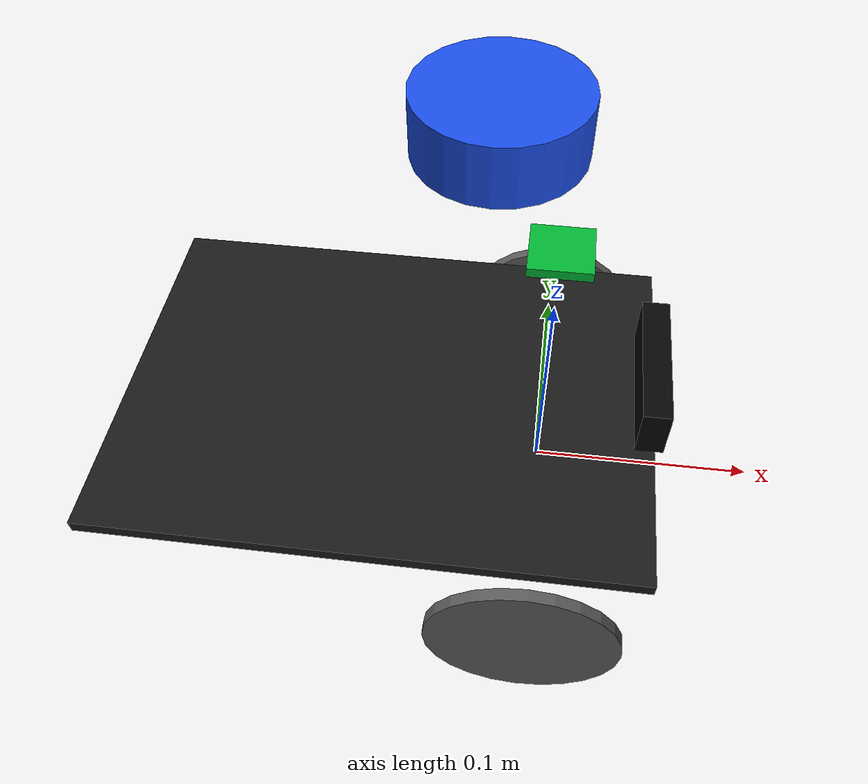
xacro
<?xml version="1.0"?>
<robot name="charlie" xmlns:xacro="http://www.ros.org/wiki/xacro">

  <!-- Base plate dimensions -->
  <xacro:property name="base_length" value="0.240"/>
  <xacro:property name="base_width"  value="0.175"/>
  <xacro:property name="base_height" value="0.006"/>

  <!-- Base plate visual/collision center relative to base_link -->
  <xacro:property name="base_box_x" value="-0.070"/>
  <xacro:property name="base_box_y" value="0.000"/>
  <xacro:property name="base_box_z" value="0.037"/>

  <!-- Wheel dimensions -->
  <xacro:property name="wheel_diameter" value="0.08454"/>
  <xacro:property name="wheel_radius" value="${wheel_diameter / 2.0}"/>
  <xacro:property name="wheel_width" value="0.00508"/>
  <xacro:property name="wheel_separation" value="0.196"/>

  <!-- LiDAR dimensions -->
  <xacro:property name="lidar_radius" value="0.031"/>
  <xacro:property name="lidar_height" value="0.023"/>

  <!-- Camera enclosure dimensions -->
  <xacro:property name="camera_length" value="0.012"/>
  <xacro:property name="camera_width" value="0.064"/>
  <xacro:property name="camera_height" value="0.023"/>

  <!-- IMU board dimensions -->
  <xacro:property name="imu_length" value="0.025"/>
  <xacro:property name="imu_width" value="0.025"/>
  <xacro:property name="imu_height" value="0.004"/>

  <!-- Sensor frame positions relative to base_link -->
  <xacro:property name="laser_x" value="-0.025"/>
  <xacro:property name="laser_y" value="0.000"/>
  <xacro:property name="laser_z" value="0.185"/>

  <!-- camera_link is the camera sensor frame.
       The sensor is offset from the enclosure center in y.
       The enclosure itself is centered at robot y = 0. -->
  <xacro:property name="camera_x" value="0.045"/>
  <xacro:property name="camera_y" value="-0.016"/>
  <xacro:property name="camera_z" value="0.065"/>

  <!-- Offset the camera body visual relative to camera_link so the
       enclosure center is at y = 0 in base_link coordinates. -->
  <xacro:property name="camera_body_x" value="0.000"/>
  <xacro:property name="camera_body_y" value="${-camera_y}"/>
  <xacro:property name="camera_body_z" value="0.000"/>

  <xacro:property name="imu_x" value="0.000"/>
  <xacro:property name="imu_y" value="0.000"/>
  <xacro:property name="imu_z" value="0.130"/>

  <!-- Materials -->
  <material name="charlie_dark">
    <color rgba="0.1 0.1 0.1 1.0"/>
  </material>

  <material name="wheel_gray">
    <color rgba="0.35 0.35 0.35 1.0"/>
  </material>

  <material name="lidar_blue">
    <color rgba="0.1 0.3 0.9 1.0"/>
  </material>

  <material name="camera_black">
    <color rgba="0.02 0.02 0.02 1.0"/>
  </material>

  <material name="imu_green">
    <color rgba="0.0 0.7 0.2 1.0"/>
  </material>

  <!-- Main robot body frame.
       base_link itself stays at the wheel axle reference.
       The base plate box is offset relative to base_link. -->
  <link name="base_link">
    <visual>
      <origin xyz="${base_box_x} ${base_box_y} ${base_box_z}" rpy="0 0 0"/>
      <geometry>
        <box size="${base_length} ${base_width} ${base_height}"/>
      </geometry>
      <material name="charlie_dark"/>
    </visual>

    <collision>
      <origin xyz="${base_box_x} ${base_box_y} ${base_box_z}" rpy="0 0 0"/>
      <geometry>
        <box size="${base_length} ${base_width} ${base_height}"/>
      </geometry>
    </collision>
  </link>

  <!-- Wheels.
       URDF cylinders are along local z by default.
       Rotate 90 degrees about x so the wheel axle points along robot y. -->
  <link name="left_wheel_link">
    <visual>
      <origin xyz="0 0 0" rpy="1.5708 0 0"/>
      <geometry>
        <cylinder radius="${wheel_radius}" length="${wheel_width}"/>
      </geometry>
      <material name="wheel_gray"/>
    </visual>

    <collision>
      <origin xyz="0 0 0" rpy="1.5708 0 0"/>
      <geometry>
        <cylinder radius="${wheel_radius}" length="${wheel_width}"/>
      </geometry>
    </collision>
  </link>

  <joint name="left_wheel_joint" type="fixed">
    <parent link="base_link"/>
    <child link="left_wheel_link"/>
    <origin xyz="0 ${wheel_separation / 2.0} 0" rpy="0 0 0"/>
  </joint>

  <link name="right_wheel_link">
    <visual>
      <origin xyz="0 0 0" rpy="1.5708 0 0"/>
      <geometry>
        <cylinder radius="${wheel_radius}" length="${wheel_width}"/>
      </geometry>
      <material name="wheel_gray"/>
    </visual>

    <collision>
      <origin xyz="0 0 0" rpy="1.5708 0 0"/>
      <geometry>
        <cylinder radius="${wheel_radius}" length="${wheel_width}"/>
      </geometry>
    </collision>
  </link>

  <joint name="right_wheel_joint" type="fixed">
    <parent link="base_link"/>
    <child link="right_wheel_link"/>
    <origin xyz="0 ${-wheel_separation / 2.0} 0" rpy="0 0 0"/>
  </joint>

  <!-- LiDAR frame.
       The LiDAR driver should publish LaserScan with header.frame_id = laser_frame.
       laser_frame is at the LiDAR scan/body center height. -->
  <link name="laser_frame">
    <visual>
      <origin xyz="0 0 0" rpy="0 0 0"/>
      <geometry>
        <cylinder radius="${lidar_radius}" length="${lidar_height}"/>
      </geometry>
      <material name="lidar_blue"/>
    </visual>

    <collision>
      <origin xyz="0 0 0" rpy="0 0 0"/>
      <geometry>
        <cylinder radius="${lidar_radius}" length="${lidar_height}"/>
      </geometry>
    </collision>
  </link>

  <joint name="laser_joint" type="fixed">
    <parent link="base_link"/>
    <child link="laser_frame"/>
    <origin xyz="${laser_x} ${laser_y} ${laser_z}" rpy="0 0 3.14159"/>
  </joint>

  <link name="camera_link">
    <visual>
      <origin xyz="${camera_body_x} ${camera_body_y} ${camera_body_z}" rpy="0 0 0"/>
      <geometry>
        <box size="${camera_length} ${camera_width} ${camera_height}"/>
      </geometry>
      <material name="camera_black"/>
    </visual>

    <collision>
      <origin xyz="${camera_body_x} ${camera_body_y} ${camera_body_z}" rpy="0 0 0"/>
      <geometry>
        <box size="${camera_length} ${camera_width} ${camera_height}"/>
      </geometry>
    </collision>
  </link>

  <joint name="camera_joint" type="fixed">
    <parent link="base_link"/>
    <child link="camera_link"/>
    <origin xyz="${camera_x} ${camera_y} ${camera_z}" rpy="0 0 0"/>
  </joint>

  <!-- IMU frame.
       imu_link is at the IMU board center. -->
  <link name="imu_link">
    <visual>
      <origin xyz="0 0 0" rpy="0 0 0"/>
      <geometry>
        <box size="${imu_length} ${imu_width} ${imu_height}"/>
      </geometry>
      <material name="imu_green"/>
    </visual>

    <collision>
      <origin xyz="0 0 0" rpy="0 0 0"/>
      <geometry>
        <box size="${imu_length} ${imu_width} ${imu_height}"/>
      </geometry>
    </collision>
  </link>

  <joint name="imu_joint" type="fixed">
    <parent link="base_link"/>
    <child link="imu_link"/>
    <origin xyz="${imu_x} ${imu_y} ${imu_z}" rpy="0 0 0"/>
  </joint>

</robot>
